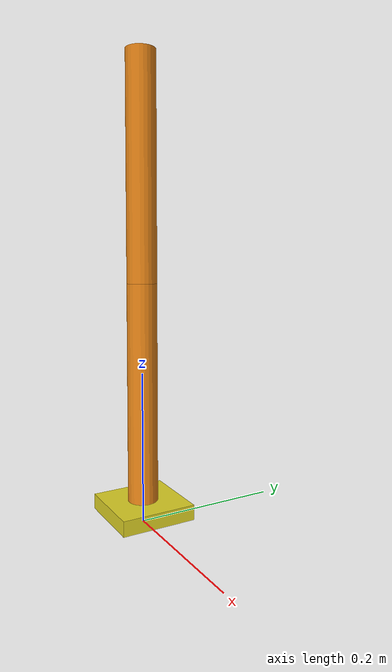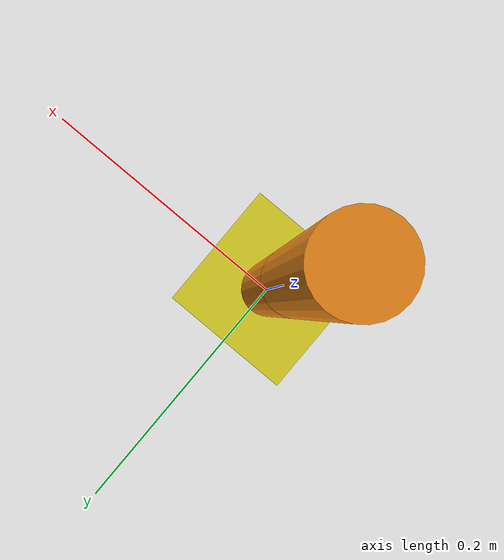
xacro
<?xml version="1.0"?>
<robot name="robot_firas" xmlns:xacro="http://www.ros.org/wiki/xacro">

    <xacro:property name="arm_base_lenth" value="0.1" />
    <xacro:property name="arm_base_width" value="0.1" />
    <xacro:property name="arm_base_heigh" value="0.02" />
    <xacro:property name="arm_cylindre_radius" value="0.02" />
    <xacro:property name="arm_cylindre_lenght" value="0.3" />

    <link name="arm_base_link">

        <visual>

            <geometry>
                <box size="${arm_base_lenth} ${arm_base_width} ${arm_base_heigh}"/>
            </geometry>
            <origin xyz="0.0 0.0 ${arm_base_heigh}" rpy="0.0 0.0 0.0"/>
            <material name="yellow"/>
        </visual>
        <collision>
            <geometry>
                <box size="${arm_base_lenth} ${arm_base_width} ${arm_base_heigh}"/>
            </geometry>
            <origin xyz="0.0 0.0 ${arm_base_heigh}" rpy="0.0 0.0 0.0"/>

        </collision>
        <xacro:box_inertia m="0.5"  l="${2*arm_base_lenth}" w="${2*arm_base_width}" h="${2*arm_base_heigh}"
                           xyz="0.0 0.0 ${arm_base_heigh}"  rpy="0.0 0.0 0.0"/>

    </link>
    <link name="forearm_link">

        <visual>

            <geometry>
                <cylinder radius="0.02" length="0.3"/>
            </geometry>
            <material name="orange"/>
            <origin xyz="0.0 0.0 ${arm_cylindre_lenght/2}" rpy="0.0 0.0 0.0"/>
        </visual>
        <collision>
            <geometry>
                    <cylinder radius="0.02" length="0.3"/>
                </geometry>

                <origin xyz="0.0 0.0 ${arm_cylindre_lenght/2}" rpy="0.0 0.0 0.0"/>

        </collision>
        <xacro:wheel_inertia m="0.3"  r="${2*arm_cylindre_radius}" h="${2*arm_cylindre_lenght}"
                             xyz="0.0 0.0 ${arm_cylindre_lenght/2}"  rpy="0.0 0.0 0.0"/>

    </link>
    <link name="hand_link">

        <visual>

            <geometry>
                <cylinder radius="0.02" length="0.3"/>
            </geometry>
            <material name="orange"/>
            <origin xyz="0.0 0.0 ${arm_cylindre_lenght/2}" rpy="0.0 0.0 0.0"/>
        </visual>
        <collision>
            <geometry>
                <cylinder radius="0.02" length="0.3"/>
            </geometry>
            <origin xyz="0.0 0.0 ${arm_cylindre_lenght/2}" rpy="0.0 0.0 0.0"/>

        </collision>
        <xacro:wheel_inertia m="0.3"  r="${2*arm_cylindre_radius}" h="${2*arm_cylindre_lenght}"
                             xyz="0.0 0.0 ${arm_cylindre_lenght/2}"  rpy="0.0 0.0 0.0"/>

    </link>

    <joint name="base_arm_joint" type="revolute">
        <origin xyz="0.0 0.0 ${arm_base_heigh}" rpy="0.0 0.0 0.0"/>
        <parent link="arm_base_link"/>
        <child link="forearm_link"/>
        <axis xyz="0.0 1.0 0.0"/>
        <limit lower="0.0" upper="${pi/2}" effort="100.0" velocity="100.0"/>
        <dynamics friction="0.05" damping="0.1" />

    </joint>

    <joint name="hand_arm_joint" type="revolute">
        <origin xyz="0.0 0.0 ${arm_cylindre_lenght}" rpy="0.0 0.0 0.0"/>
        <parent link="forearm_link"/>
        <child link="hand_link"/>
        <axis xyz="0.0 1.0 0.0"/>
        <limit lower="0.0" upper="${pi/2}" effort="100.0" velocity="100.0"/>
        <dynamics friction="0.05" damping="0.1" />

    </joint>

</robot>
